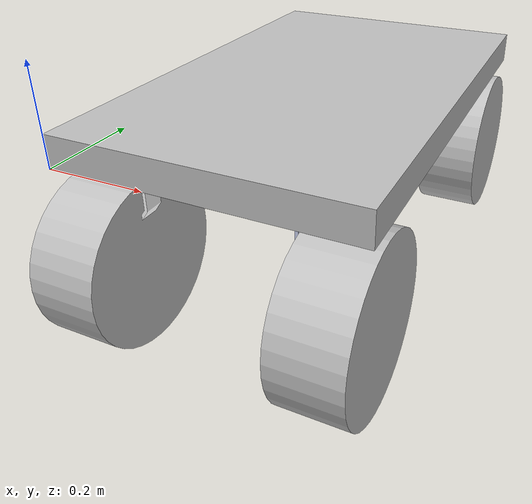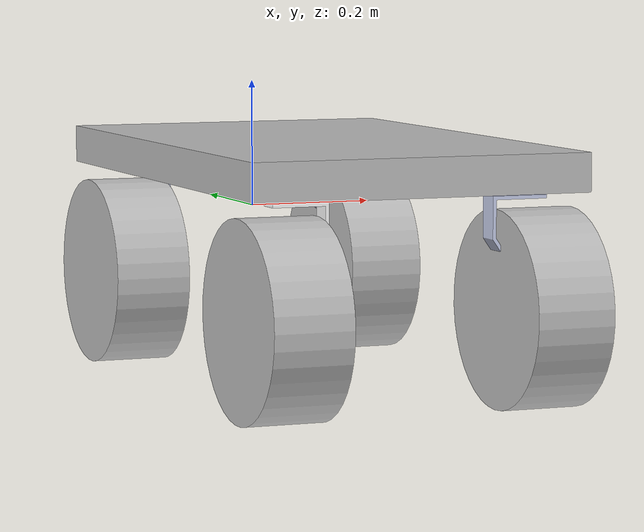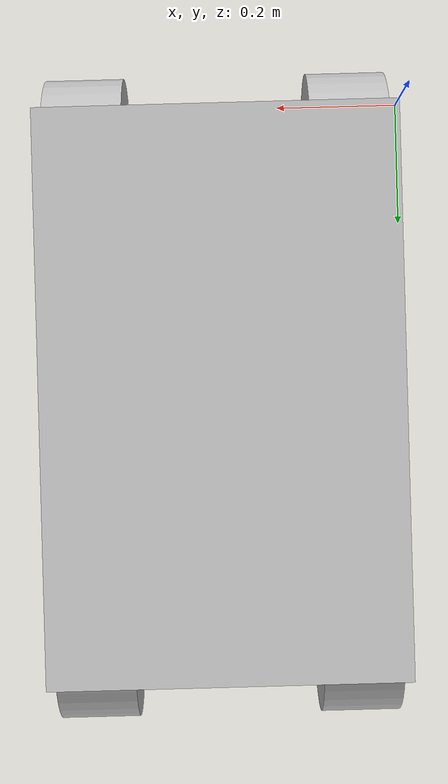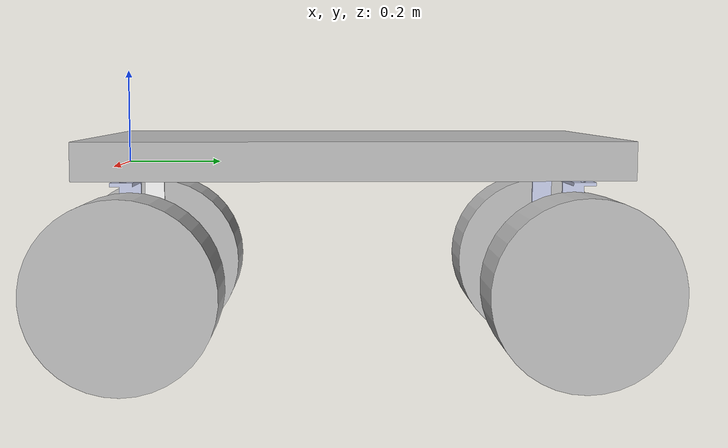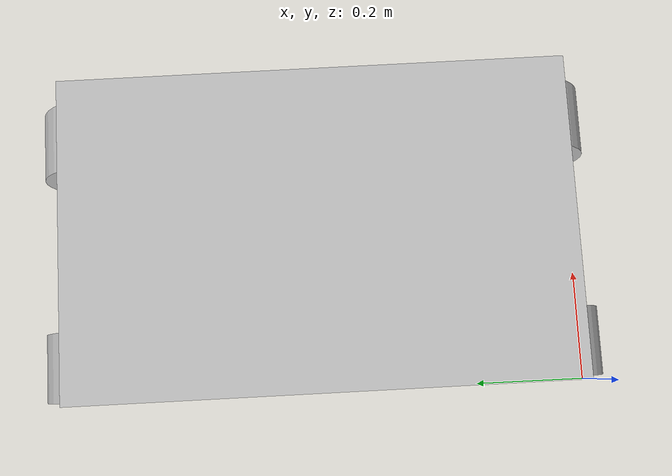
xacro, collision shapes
<?xml version="1.0"?>
<robot xmlns:xacro="http://www.ros.org/wiki/xacro" name='LARI'>

<xacro:include filename="$(find depthai_descriptions)/urdf/include/base_macro.urdf.xacro"/>

  <link
    name="base_link">
    <inertial>
      <origin
        xyz="0.3048 0.4826 0.029883"
        rpy="0 0 0" />
      <mass
        value="5.0909" />
      <inertia
        ixx="0.17719"
        ixy="-2.5081E-13"
        ixz="2.9216E-15"
        iyy="0.053928"
        iyz="-2.6812E-10"
        izz="0.22894" />
    </inertial>
    <visual>
      <origin
        xyz="0 0 0"
        rpy="0 0 0" />
      <geometry>
        <mesh
          filename="file://$(find LARI_urdf)/meshes/base_link.STL" />
      </geometry>
      <material
        name="">
        <color
          rgba="0.75294 0.75294 0.75294 1" />
      </material>
    </visual>
    <collision>
      <origin
        xyz="0 0 0"
        rpy="0 0 0" />
      <geometry>
        <mesh
          filename="file://$(find LARI_urdf)/meshes/base_link_collision.STL" />
      </geometry>
    </collision>
  </link>
  <link
    name="fr_steering_link">
    <inertial>
      <origin
        xyz="-0.02622 -2.2204E-16 -0.083039"
        rpy="0 0 0" />
      <mass
        value="0.098856" />
      <inertia
        ixx="0.00044959"
        ixy="7.917E-20"
        ixz="0.00016664"
        iyy="0.00060742"
        iyz="-2.6408E-19"
        izz="0.00018464" />
    </inertial>
    <visual>
      <origin
        xyz="0 0 0"
        rpy="0 0 0" />
      <geometry>
        <mesh
          filename="file://$(find LARI_urdf)/meshes/fr_steering_link.STL" />
      </geometry>
      <material
        name="">
        <color
          rgba="0.79216 0.81961 0.93333 1" />
      </material>
    </visual>
    <collision>
      <origin
        xyz="0 0 0"
        rpy="0 0 0" />
      <geometry>
        <mesh
          filename="file://$(find LARI_urdf)/meshes/fr_steering_link.STL" />
      </geometry>
    </collision>
  </link>
  <joint
    name="fr_steering_joint"
    type="revolute">
    <origin
      xyz="0.5334 0.889 -0.012675"
      rpy="0 0 0" />
    <parent
      link="base_link" />
    <child
      link="fr_steering_link" />
    <axis
      xyz="0 0 -1" />
    <limit
      lower="0"
      upper="6.2832"
      effort="10"
      velocity="3.1415" />
  </joint>
  <link
    name="fr_wheel_link">
    <inertial>
      <origin
        xyz="-0.0664892303886351 -1.99840144432528E-15 -5.55111512312578E-16"
        rpy="0 0 0" />
      <mass
        value="2.75275986593305" />
      <inertia
        ixx="0.0218845479729468"
        ixy="-6.39259484282427E-18"
        ixz="-1.8920538930178E-17"
        iyy="0.0138310963806751"
        iyz="4.44522890719E-18"
        izz="0.0138310963806751" />
    </inertial>
    <visual>
      <origin
        xyz="0 0 0"
        rpy="0 0 0" />
      <geometry>
        <mesh
          filename="file://$(find LARI_urdf)/meshes/fr_wheel_link.STL" />
      </geometry>
      <material
        name="">
        <color
          rgba="0.752941176470588 0.752941176470588 0.752941176470588 1" />
      </material>
    </visual>
    <collision>
      <origin
        xyz="0 0 0"
        rpy="0 0 0" />
      <geometry>
        <mesh
          filename="file://$(find LARI_urdf)/meshes/fr_wheel_link_collision.STL" />
      </geometry>
    </collision>
  </link>
  <joint
    name="fr_wheel_joint"
    type="continuous">
    <origin
      xyz="0.074424 0 -0.18931"
      rpy="0 0 0" />
    <parent
      link="fr_steering_link" />
    <child
      link="fr_wheel_link" />
    <axis
      xyz="-1 0 0" />
    <limit
      effort="0"
      velocity="5.236" />
  </joint>
  <link
    name="fl_steering_link">
    <inertial>
      <origin
        xyz="0.0262197804039281 -4.44089209850063E-16 -0.0830391608669484"
        rpy="0 0 0" />
      <mass
        value="0.0988556676979312" />
      <inertia
        ixx="0.00044959153970768"
        ixy="-2.979275117136E-19"
        ixz="-0.000166636726877408"
        iyy="0.000607416792941197"
        iyz="-6.73036831233734E-19"
        izz="0.000184637184332654" />
    </inertial>
    <visual>
      <origin
        xyz="0 0 0"
        rpy="0 0 0" />
      <geometry>
        <mesh
          filename="file://$(find LARI_urdf)/meshes/fl_steering_link.STL" />
      </geometry>
      <material
        name="">
        <color
          rgba="0.792156862745098 0.819607843137255 0.933333333333333 1" />
      </material>
    </visual>
    <collision>
      <origin
        xyz="0 0 0"
        rpy="0 0 0" />
      <geometry>
        <mesh
          filename="file://$(find LARI_urdf)/meshes/fl_steering_link.STL" />
      </geometry>
    </collision>
  </link>
  <joint
    name="fl_steering_joint"
    type="revolute">
    <origin
      xyz="0.0762 0.889 -0.012675"
      rpy="0 0 0" />
    <parent
      link="base_link" />
    <child
      link="fl_steering_link" />
    <axis
      xyz="0 0 -1" />
    <limit
      lower="0"
      upper="6.2832"
      effort="10"
      velocity="3.1415" />
  </joint>
  <link
    name="fl_wheel_link">
    <inertial>
      <origin
        xyz="0.066489232317388 6.66133814775094E-16 4.44089209850063E-16"
        rpy="0 0 0" />
      <mass
        value="2.75276091113649" />
      <inertia
        ixx="0.0218845510420346"
        ixy="-5.05149354882982E-18"
        ixz="-1.39269086220729E-17"
        iyy="0.0138310985202676"
        iyz="2.33103467084329E-18"
        izz="0.0138310985202676" />
    </inertial>
    <visual>
      <origin
        xyz="0 0 0"
        rpy="0 0 0" />
      <geometry>
        <mesh
          filename="file://$(find LARI_urdf)/meshes/fl_wheel_link.STL" />
      </geometry>
      <material
        name="">
        <color
          rgba="0.752941176470588 0.752941176470588 0.752941176470588 1" />
      </material>
    </visual>
    <collision>
      <origin
        xyz="0 0 0"
        rpy="0 0 0" />
      <geometry>
        <mesh
          filename="file://$(find LARI_urdf)/meshes/fl_wheel_link_collision.STL" />
      </geometry>
    </collision>
  </link>
  <joint
    name="fl_wheel_joint"
    type="continuous">
    <origin
      xyz="-0.074424 0 -0.18931"
      rpy="0 0 0" />
    <parent
      link="fl_steering_link" />
    <child
      link="fl_wheel_link" />
    <axis
      xyz="-1 0 0" />
    <limit
      effort="0"
      velocity="5.23599" />
  </joint>
  <link
    name="rr_steering_link">
    <inertial>
      <origin
        xyz="-0.0262197804039278 -5.55111512312578E-17 -0.0830391608669484"
        rpy="0 0 0" />
      <mass
        value="0.0988556676979317" />
      <inertia
        ixx="0.000449591539707683"
        ixy="-1.20554509566363E-19"
        ixz="0.000166636726877409"
        iyy="0.000607416792941201"
        iyz="6.97571247904579E-20"
        izz="0.000184637184332656" />
    </inertial>
    <visual>
      <origin
        xyz="0 0 0"
        rpy="0 0 0" />
      <geometry>
        <mesh
          filename="file://$(find LARI_urdf)/meshes/rr_steering_link.STL" />
      </geometry>
      <material
        name="">
        <color
          rgba="0.792156862745098 0.819607843137255 0.933333333333333 1" />
      </material>
    </visual>
    <collision>
      <origin
        xyz="0 0 0"
        rpy="0 0 0" />
      <geometry>
        <mesh
          filename="file://$(find LARI_urdf)/meshes/rr_steering_link.STL" />
      </geometry>
    </collision>
  </link>
  <joint
    name="rr_steering_joint"
    type="revolute">
    <origin
      xyz="0.5334 0.0762 -0.012675"
      rpy="0 0 0" />
    <parent
      link="base_link" />
    <child
      link="rr_steering_link" />
    <axis
      xyz="0 0 -1" />
    <limit
      lower="0"
      upper="6.2832"
      effort="10"
      velocity="3.1415" />
  </joint>
  <link
    name="rr_wheel_link">
    <inertial>
      <origin
        xyz="-0.066489230388635 -1.4432899320127E-15 -6.66133814775094E-16"
        rpy="0 0 0" />
      <mass
        value="2.75275986593303" />
      <inertia
        ixx="0.0218845479729468"
        ixy="4.31119591614716E-18"
        ixz="-1.12993865357308E-17"
        iyy="0.0138310963806751"
        iyz="-1.15023275134098E-17"
        izz="0.013831096380675" />
    </inertial>
    <visual>
      <origin
        xyz="0 0 0"
        rpy="0 0 0" />
      <geometry>
        <mesh
          filename="file://$(find LARI_urdf)/meshes/rr_wheel_link.STL" />
      </geometry>
      <material
        name="">
        <color
          rgba="0.752941176470588 0.752941176470588 0.752941176470588 1" />
      </material>
    </visual>
    <collision>
      <origin
        xyz="0 0 0"
        rpy="0 0 0" />
      <geometry>
        <mesh
          filename="file://$(find LARI_urdf)/meshes/rr_wheel_link_collision.STL" />
      </geometry>
    </collision>
  </link>
  <joint
    name="rr_wheel_joint"
    type="continuous">
    <origin
      xyz="0.074424 0 -0.18931"
      rpy="0 0 0" />
    <parent
      link="rr_steering_link" />
    <child
      link="rr_wheel_link" />
    <axis
      xyz="-1 0 0" />
    <limit
      effort="0"
      velocity="5.23599" />
  </joint>
  <link
    name="rl_steering_link">
    <inertial>
      <origin
        xyz="0 0 0"
        rpy="0 0 0" />
      <mass
        value="0" />
      <inertia
        ixx="0"
        ixy="0"
        ixz="0"
        iyy="0"
        iyz="0"
        izz="0" />
    </inertial>
    <visual>
      <origin
        xyz="0 0 0"
        rpy="0 0 0" />
      <geometry>
        <mesh
          filename="file://$(find LARI_urdf)/meshes/rl_steering_link.STL" />
      </geometry>
      <material
        name="">
        <color
          rgba="1 1 1 1" />
      </material>
    </visual>
    <collision>
      <origin
        xyz="0 0 0"
        rpy="0 0 0" />
      <geometry>
        <mesh
          filename="file://$(find LARI_urdf)/meshes/rl_steering_link.STL" />
      </geometry>
    </collision>
  </link>
  <joint
    name="rl_steering_joint"
    type="revolute">
    <origin
      xyz="0.0762 0.0762 -0.012675"
      rpy="0 0 0" />
    <parent
      link="base_link" />
    <child
      link="rl_steering_link" />
    <axis
      xyz="0 0 -1" />
    <limit
      lower="0"
      upper="6.2832"
      effort="10"
      velocity="3.1415" />
  </joint>
  <link
    name="rl_wheel_link">
    <inertial>
      <origin
        xyz="0.0664892303886349 1.94289029309402E-15 -5.55111512312578E-16"
        rpy="0 0 0" />
      <mass
        value="2.75275986593305" />
      <inertia
        ixx="0.0218845479729469"
        ixy="-4.4125899754636E-18"
        ixz="-3.1580215704308E-18"
        iyy="0.0138310963806751"
        iyz="-9.15399094009611E-18"
        izz="0.0138310963806751" />
    </inertial>
    <visual>
      <origin
        xyz="0 0 0"
        rpy="0 0 0" />
      <geometry>
        <mesh
          filename="file://$(find LARI_urdf)/meshes/rl_wheel_link.STL" />
      </geometry>
      <material
        name="">
        <color
          rgba="0.752941176470588 0.752941176470588 0.752941176470588 1" />
      </material>
    </visual>
    <collision>
      <origin
        xyz="0 0 0"
        rpy="0 0 0" />
      <geometry>
        <mesh
          filename="file://$(find LARI_urdf)/meshes/rl_wheel_link_collision.STL" />
      </geometry>
    </collision>
  </link>
  <joint
    name="rl_wheel_joint"
    type="continuous">
    <origin
      xyz="-0.074424 0 -0.18931"
      rpy="-1 0 0" />
    <parent
      link="rl_steering_link" />
    <child
      link="rl_wheel_link" />
    <axis
      xyz="-1 0 0" />
    <limit
      effort="0"
      velocity="5.23599" />
  </joint>

  <link name="camera_link">
 <visual>
 <origin xyz="-0.022 0 0.1" rpy="0 0 0" />
 <geometry>
       <mesh filename= "$(find depthai_descriptions)/urdf/include/base_macro.urdf.xacro"/>
     </geometry>
</visual>
 <inertial>
 <mass value="0.001"/>
 <inertia ixx="0.001" ixy="0" ixz="0" iyy="0.001" iyz="0" izz="0.001"/>
 </inertial>
</link>
<joint
    name="camera_joint"
    type="revolute">
    <origin
      xyz="-0.022 0 0.1"
      rpy="0 0 0" />
    <parent
      link="base_link" />
    <child
      link="camera_link" />
    <axis
      xyz="0 0 -1" />
    <limit
      lower="0"
      upper="6.2832"
      effort="10"
      velocity="3.1415" />
  </joint>

</robot>
